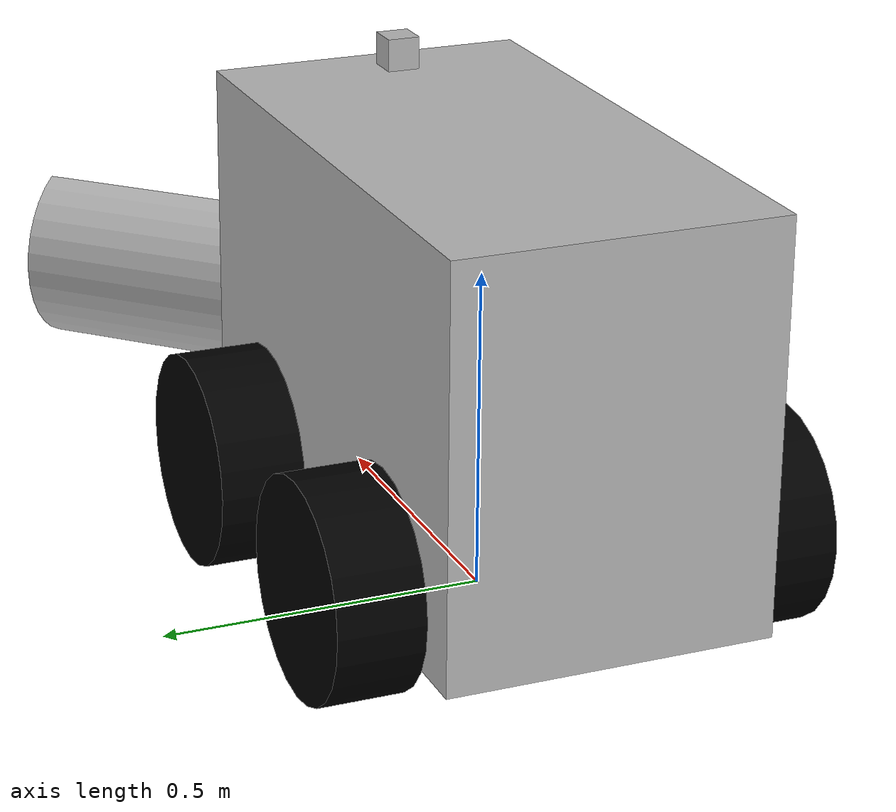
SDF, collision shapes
<?xml version='1.0'?>
<sdf version='1.4'>
  <model name="yeti_with_plow">
    <static>false</static>
    <include>
	  <uri>model://yeti</uri>
	  <name>yeti_body</name>
	</include>

	<link name='plow'>

     <inertial>
        <mass>27.0</mass>
     </inertial>

      <pose>0.9 0 0.003 0 0 3.1416</pose>

      <collision name='collision'>
        <geometry>
          <mesh>
            <uri>model://yeti_with_plow/meshes/45degplow.dae</uri>
          </mesh>
        </geometry>
      </collision>

      <visual name='visual'>
        <geometry>
          <mesh>
            <uri>model://yeti_with_plow/meshes/45degplow.dae</uri>
          </mesh>
        </geometry>
      </visual>
    </link>

    <joint type='revolute' name='plow_connection'>
	<pose>0.4 0 0.05 0 0 0</pose>
      <child>plow</child>
      <parent>yeti_body::chassis</parent>
	<axis>
        <xyz>0 1 0</xyz>
      </axis>
    </joint>

  </model>
</sdf>

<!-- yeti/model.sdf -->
<!-- Still Slids with high Frction-->
<!--Bottom center of yeti is 0 0 0 -->
<sdf version='1.4'><!--Change Base Link to wheel Axel -->
  <model name="yeti">
    <static>false</static>
    <link name='chassis'>
      <inertial>
        <mass>136.0</mass>
      </inertial>
      <pose>0 0 0.395 0 0 0</pose><!-- Starting position-->
      <collision name='collision'><!--Collision box isn't visualized-->
        <geometry>
          <box>
            <size> .93 .495 .625 </size>
          </box>
        </geometry>
      </collision>
      <visual name='visual'><!--Where the Model Appears and its cad file-->
        <pose>.52 -0.247 -.32 0 0 0</pose>
        <geometry>
          <mesh>
            <uri>model://yeti/meshes/chassis.dae</uri>
          </mesh>
        </geometry>
      </visual>
    </link>
    <link name='left_front_wheel'>
	  <pose>0.24 0.315 0.165 0 1.5707 1.5707</pose>
      <collision name='collision'>
        <geometry>
          <cylinder>
            <radius>.165</radius>
            <length>.13</length>
          </cylinder>
        </geometry>
        <surface>
          <friction>
            <ode>
              <mu>0.9</mu>
              <mu2>0.9</mu2>
            </ode>
          </friction>
        </surface>
      </collision>
      <visual name='visual'>
        <geometry>
          <cylinder>
            <radius>.165</radius>
            <length>.13</length>
          </cylinder>
        </geometry>
        <material>
          <ambient>0.0 0.0 0.0 1.0</ambient>
          <diffuse>0.0 0.0 0.0 1.00</diffuse>
          <specular>0.0 0.0 0.0 1.0</specular>
          <emissive>0.0 0.0 0.0 1.0</emissive>
        </material>
      </visual>
    </link>
    <link name='right_front_wheel'>
      <pose>0.24 -0.315 0.165 0 1.5707 1.5707</pose>
      <collision name='collision'>
        <geometry>
          <cylinder>
            <radius>.165</radius>
            <length>.13</length>
          </cylinder>
        </geometry>
        <surface>
          <friction>
            <ode>
              <mu>0.9</mu>
              <mu2>0.9</mu2>
            </ode>
          </friction>
        </surface>
      </collision>
      <visual name='visual'>
        <geometry>
          <cylinder>
            <radius>.165</radius>
            <length>.13</length>
          </cylinder>
        </geometry>
        <material>
          <ambient>0.0 0.0 0.0 1.0</ambient>
          <diffuse>0.0 0.0 0.0 1.00</diffuse>
          <specular>0.0 0.0 0.0 1.0</specular>
          <emissive>0.0 0.0 0.0 1.0</emissive>
        </material>
      </visual>
    </link>
    <link name='left_back_wheel'>
	  <pose>-0.24 0.315 0.165 0 1.5707 1.5707</pose>
      <collision name='collision'>
        <geometry>
          <cylinder>
            <radius>.165</radius>
            <length>.13</length>
          </cylinder>
        </geometry>
        <surface>
          <friction>
            <ode>
              <mu>0.9</mu>
              <mu2>0.9</mu2>
            </ode>
          </friction>
        </surface>
      </collision>
      <visual name='visual'>
        <geometry>
          <cylinder>
            <radius>.165</radius>
            <length>.13</length>
          </cylinder>
        </geometry>
        <material>
          <ambient>0.0 0.0 0.0 1.0</ambient>
          <diffuse>0.0 0.0 0.0 1.00</diffuse>
          <specular>0.0 0.0 0.0 1.0</specular>
          <emissive>0.0 0.0 0.0 1.0</emissive>
        </material>
      </visual>
    </link>
    <link name='right_back_wheel'>
	  <pose>-0.24 -0.315 0.165 0 1.5707 1.5707</pose>
      <collision name='collision'>
        <geometry>
          <cylinder>
            <radius>.165</radius>
            <length>.13</length>
          </cylinder>
        </geometry>
        <surface>
          <friction>
            <ode>
              <mu>0.9</mu>
              <mu2>0.9</mu2>
            </ode>
          </friction>
        </surface>
      </collision>
      <visual name='visual'>
        <geometry>
          <cylinder>
            <radius>.165</radius>
            <length>.13</length>
          </cylinder>
        </geometry>
        <material>
          <ambient>0.0 0.0 0.0 1.0</ambient>
          <diffuse>0.0 0.0 0.0 1.00</diffuse>
          <specular>0.0 0.0 0.0 1.0</specular>
          <emissive>0.0 0.0 0.0 1.0</emissive>
        </material>
      </visual>
    </link>
    <link name="lidar">
      <pose>0.33 0 0.75 0 0 0</pose>
      <collision name='collision'>
        <geometry>
          <box>
            <size>0.05 0.05 0.05</size>
          </box>
        </geometry>
      </collision>
      <inertial name='inertial'>
        <mass value="1e-5" />
        <origin xyz="0 0 0" rpy="0 0 0"/>
        <inertia ixx="1e-6" ixy="0" ixz="0" iyy="1e-6" iyz="0" izz="1e-6" />
      </inertial>
      <sensor type="ray" name="head_sick_sensor">
        <pose>0 0 0 0 0 0</pose>
        <visualize>false</visualize>
        <update_rate>40</update_rate>
        <ray>
          <scan>
            <horizontal>
              <samples>720</samples>
              <resolution>1</resolution>
              <min_angle>-2.356</min_angle>
              <max_angle>2.356</max_angle>
            </horizontal>
          </scan>
          <range>
            <min>0.10</min>
            <max>30.0</max>
            <resolution>0.01</resolution>
          </range>
          <noise>
            <type>gaussian</type>
            <mean>0.0</mean>
            <stddev>0.001</stddev>
          </noise>
        </ray>
        <plugin name="gazebo_ros_head_sick_controller" filename="libgazebo_ros_laser.so">
          <topicName>/os1_cloud_node/scan</topicName>
          <frameName>os1_sensor</frameName>
        </plugin>
      </sensor>
    </link>
    <joint type='revolute' name='left_front_wheel_hinge'>
      <pose>0 0 .165 0 0 0</pose>
      <child>left_front_wheel</child>
      <parent>chassis</parent>
      <axis>
        <xyz>0 1 0</xyz>
      </axis>
    </joint>
    <joint type='revolute' name='right_front_wheel_hinge'>
      <pose>0 0 .165 0 0 0</pose>
      <child>right_front_wheel</child>
      <parent>chassis</parent>
      <axis>
        <xyz>0 1 0</xyz>
      </axis>
    </joint>
    <joint type='revolute' name='left_back_wheel_hinge'>
      <pose>0 0 .165 0 0 0</pose>
      <child>left_back_wheel</child>
      <parent>chassis</parent>
      <axis>
        <xyz>0 1 0</xyz>
      </axis>
    </joint>
    <joint type='revolute' name='right_back_wheel_hinge'>
      <pose>0 0 .165 0 0 0</pose>
      <child>right_back_wheel</child>
      <parent>chassis</parent>
      <axis>
        <xyz>0 1 0</xyz>
      </axis>
    </joint>
    <joint type='fixed' name='lidar_fixed'>
      <child>chassis</child>
      <parent>lidar</parent>
    </joint>
    <plugin name="skid_steer_drive_controller" filename="libgazebo_ros_skid_steer_drive.so">
      <updateRate>90.0</updateRate>
	  <robotNamespace>/yeti</robotNamespace>
      <leftFrontJoint>left_front_wheel_hinge</leftFrontJoint>
      <rightFrontJoint>right_front_wheel_hinge</rightFrontJoint>
      <leftRearJoint>left_back_wheel_hinge</leftRearJoint>
      <rightRearJoint>right_back_wheel_hinge</rightRearJoint>
      <wheelSeparation>0.48</wheelSeparation>
      <wheelDiameter>0.33</wheelDiameter>
      <robotBaseFrame>base_link</robotBaseFrame>
      <torque>60</torque>
      <topicName>cmd_vel</topicName>
      <broadcastTF>true</broadcastTF>
    </plugin>
  </model>
</sdf>
